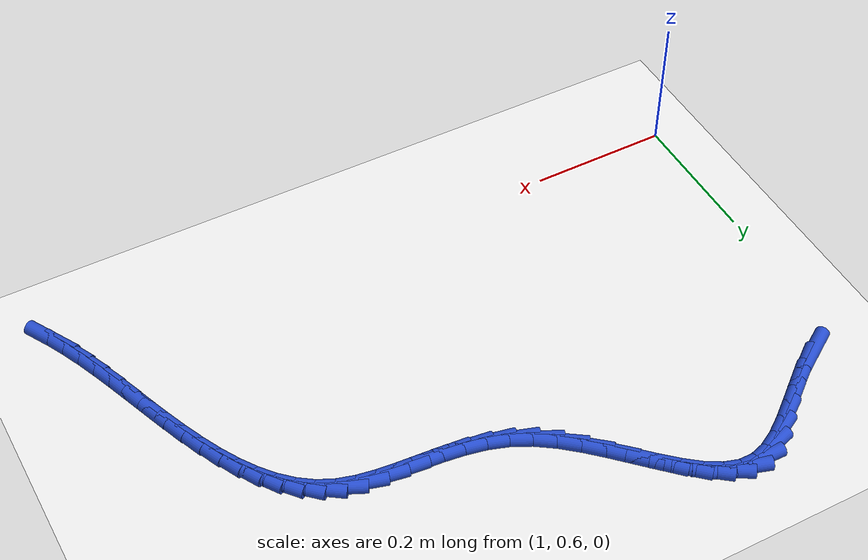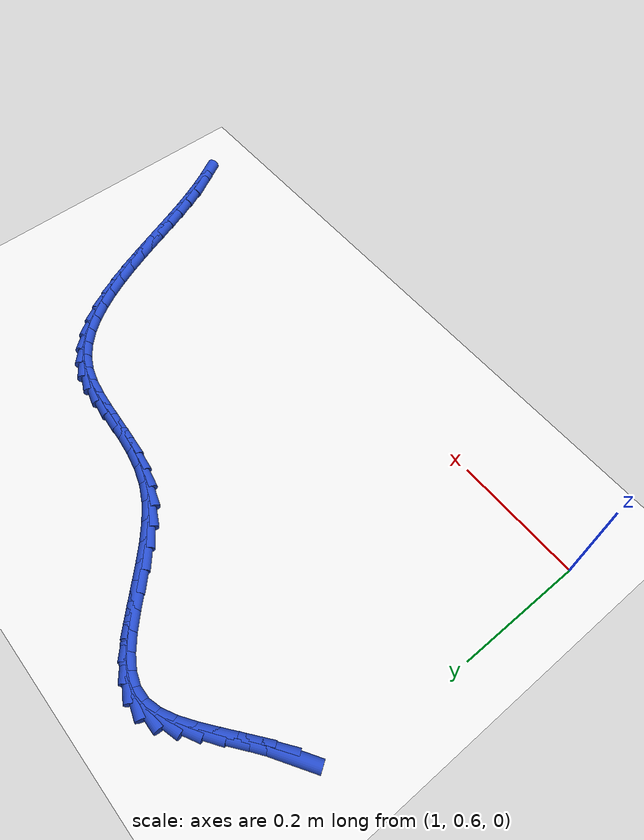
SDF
<sdf version="1.6">
 <world name="default">
  <model name="ground_plane">
   <static>1</static>
   <link name="link">
    <collision name="collision">
     <geometry><plane><normal>0 0 1</normal><size>100 100</size></plane></geometry>
     <surface><friction><ode><mu>100</mu><mu2>50</mu2></ode></friction></surface>
    </collision>
    <visual name="visual">
     <cast_shadows>0</cast_shadows>
     <geometry><plane><normal>0 0 1</normal><size>100 100</size></plane></geometry>
     <material>
      <script><uri>file://media/materials/scripts/gazebo.material</uri><name>Gazebo/WhiteGlow</name></script>
     </material>
    </visual>
   </link>
  </model>
  <model name="line">
   <link name="link_61">
    <pose>1.0534069448274923 1.0522554599802738 0.01 0 1.57 0.5718777276622412</pose>
    <collision name="collision">
     <geometry><cylinder><radius>0.01</radius><length>0.08</length></cylinder></geometry>
    </collision>
    <visual name="visual">
     <material>
      <script><name>Gazebo/Blue</name><uri>file://media/materials/scripts/gazebo.material</uri></script>
     </material>
     <geometry><cylinder><radius>0.01</radius><length>0.08</length></cylinder></geometry>
    </visual>
   </link>
   <link name="link_62">
    <pose>1.0791601967048152 1.0688307916904933 0.01 0 1.57 0.6449468357490047</pose>
    <collision name="collision">
     <geometry><cylinder><radius>0.01</radius><length>0.08</length></cylinder></geometry>
    </collision>
    <visual name="visual">
     <material>
      <script><name>Gazebo/Blue</name><uri>file://media/materials/scripts/gazebo.material</uri></script>
     </material>
     <geometry><cylinder><radius>0.01</radius><length>0.08</length></cylinder></geometry>
    </visual>
   </link>
   <link name="link_63">
    <pose>1.1041917038802125 1.0876610283717096 0.01 0 1.57 0.6753978885737065</pose>
    <collision name="collision">
     <geometry><cylinder><radius>0.01</radius><length>0.08</length></cylinder></geometry>
    </collision>
    <visual name="visual">
     <material>
      <script><name>Gazebo/Blue</name><uri>file://media/materials/scripts/gazebo.material</uri></script>
     </material>
     <geometry><cylinder><radius>0.01</radius><length>0.08</length></cylinder></geometry>
    </visual>
   </link>
   <link name="link_64">
    <pose>1.1285557269234388 1.107178510216852 0.01 0 1.57 0.6653369742243661</pose>
    <collision name="collision">
     <geometry><cylinder><radius>0.01</radius><length>0.08</length></cylinder></geometry>
    </collision>
    <visual name="visual">
     <material>
      <script><name>Gazebo/Blue</name><uri>file://media/materials/scripts/gazebo.material</uri></script>
     </material>
     <geometry><cylinder><radius>0.01</radius><length>0.08</length></cylinder></geometry>
    </visual>
   </link>
   <link name="link_65">
    <pose>1.1523065264042487 1.12581557741885 0.01 0 1.57 0.609414048286463</pose>
    <collision name="collision">
     <geometry><cylinder><radius>0.01</radius><length>0.08</length></cylinder></geometry>
    </collision>
    <visual name="visual">
     <material>
      <script><name>Gazebo/Blue</name><uri>file://media/materials/scripts/gazebo.material</uri></script>
     </material>
     <geometry><cylinder><radius>0.01</radius><length>0.08</length></cylinder></geometry>
    </visual>
   </link>
   <link name="link_66">
    <pose>1.175498362892397 1.1420045701706332 0.01 0 1.57 0.49247462118310764</pose>
    <collision name="collision">
     <geometry><cylinder><radius>0.01</radius><length>0.08</length></cylinder></geometry>
    </collision>
    <visual name="visual">
     <material>
      <script><name>Gazebo/Blue</name><uri>file://media/materials/scripts/gazebo.material</uri></script>
     </material>
     <geometry><cylinder><radius>0.01</radius><length>0.08</length></cylinder></geometry>
    </visual>
   </link>
   <link name="link_67">
    <pose>1.1981854969576382 1.15417782866513 0.01 0 1.57 0.2881056712653823</pose>
    <collision name="collision">
     <geometry><cylinder><radius>0.01</radius><length>0.08</length></cylinder></geometry>
    </collision>
    <visual name="visual">
     <material>
      <script><name>Gazebo/Blue</name><uri>file://media/materials/scripts/gazebo.material</uri></script>
     </material>
     <geometry><cylinder><radius>0.01</radius><length>0.08</length></cylinder></geometry>
    </visual>
   </link>
   <link name="link_68">
    <pose>1.220422189169727 1.160767693095271 0.01 0 1.57 -0.017070213978598474</pose>
    <collision name="collision">
     <geometry><cylinder><radius>0.01</radius><length>0.08</length></cylinder></geometry>
    </collision>
    <visual name="visual">
     <material>
      <script><name>Gazebo/Blue</name><uri>file://media/materials/scripts/gazebo.material</uri></script>
     </material>
     <geometry><cylinder><radius>0.01</radius><length>0.08</length></cylinder></geometry>
    </visual>
   </link>
   <link name="link_69">
    <pose>1.242270595344905 1.160394699896962 0.01 0 1.57 -0.3150210145547944</pose>
    <collision name="collision">
     <geometry><cylinder><radius>0.01</radius><length>0.08</length></cylinder></geometry>
    </collision>
    <visual name="visual">
     <material>
      <script><name>Gazebo/Blue</name><uri>file://media/materials/scripts/gazebo.material</uri></script>
     </material>
     <geometry><cylinder><radius>0.01</radius><length>0.08</length></cylinder></geometry>
    </visual>
   </link>
   <link name="link_70">
    <pose>1.2638633023680568 1.1533582263795796 0.01 0 1.57 -0.5271377800163405</pose>
    <collision name="collision">
     <geometry><cylinder><radius>0.01</radius><length>0.08</length></cylinder></geometry>
    </collision>
    <visual name="visual">
     <material>
      <script><name>Gazebo/Blue</name><uri>file://media/materials/scripts/gazebo.material</uri></script>
     </material>
     <geometry><cylinder><radius>0.01</radius><length>0.08</length></cylinder></geometry>
    </visual>
   </link>
   <link name="link_71">
    <pose>1.2853699008650052 1.1408396951481046 0.01 0 1.57 -0.6615853059170025</pose>
    <collision name="collision">
     <geometry><cylinder><radius>0.01</radius><length>0.08</length></cylinder></geometry>
    </collision>
    <visual name="visual">
     <material>
      <script><name>Gazebo/Blue</name><uri>file://media/materials/scripts/gazebo.material</uri></script>
     </material>
     <geometry><cylinder><radius>0.01</radius><length>0.08</length></cylinder></geometry>
    </visual>
   </link>
   <link name="link_72">
    <pose>1.3069603100398033 1.124028361012376 0.01 0 1.57 -0.7392312296707337</pose>
    <collision name="collision">
     <geometry><cylinder><radius>0.01</radius><length>0.08</length></cylinder></geometry>
    </collision>
    <visual name="visual">
     <material>
      <script><name>Gazebo/Blue</name><uri>file://media/materials/scripts/gazebo.material</uri></script>
     </material>
     <geometry><cylinder><radius>0.01</radius><length>0.08</length></cylinder></geometry>
    </visual>
   </link>
   <link name="link_73">
    <pose>1.3288044490965027 1.1041134787822344 0.01 0 1.57 -0.775451941982872</pose>
    <collision name="collision">
     <geometry><cylinder><radius>0.01</radius><length>0.08</length></cylinder></geometry>
    </collision>
    <visual name="visual">
     <material>
      <script><name>Gazebo/Blue</name><uri>file://media/materials/scripts/gazebo.material</uri></script>
     </material>
     <geometry><cylinder><radius>0.01</radius><length>0.08</length></cylinder></geometry>
    </visual>
   </link>
   <link name="link_74">
    <pose>1.3510722372391535 1.0822843032675165 0.01 0 1.57 -0.7786353338687526</pose>
    <collision name="collision">
     <geometry><cylinder><radius>0.01</radius><length>0.08</length></cylinder></geometry>
    </collision>
    <visual name="visual">
     <material>
      <script><name>Gazebo/Blue</name><uri>file://media/materials/scripts/gazebo.material</uri></script>
     </material>
     <geometry><cylinder><radius>0.01</radius><length>0.08</length></cylinder></geometry>
    </visual>
   </link>
   <link name="link_75">
    <pose>1.3739335936718093 1.059730089278063 0.01 0 1.57 -0.7518364163350696</pose>
    <collision name="collision">
     <geometry><cylinder><radius>0.01</radius><length>0.08</length></cylinder></geometry>
    </collision>
    <visual name="visual">
     <material>
      <script><name>Gazebo/Blue</name><uri>file://media/materials/scripts/gazebo.material</uri></script>
     </material>
     <geometry><cylinder><radius>0.01</radius><length>0.08</length></cylinder></geometry>
    </visual>
   </link>
   <link name="link_76">
    <pose>1.3975584375985204 1.0376400916237118 0.01 0 1.57 -0.6940486093549676</pose>
    <collision name="collision">
     <geometry><cylinder><radius>0.01</radius><length>0.08</length></cylinder></geometry>
    </collision>
    <visual name="visual">
     <material>
      <script><name>Gazebo/Blue</name><uri>file://media/materials/scripts/gazebo.material</uri></script>
     </material>
     <geometry><cylinder><radius>0.01</radius><length>0.08</length></cylinder></geometry>
    </visual>
   </link>
   <link name="link_77">
    <pose>1.4221166882233387 1.0172035651143025 0.01 0 1.57 -0.6010019453669507</pose>
    <collision name="collision">
     <geometry><cylinder><radius>0.01</radius><length>0.08</length></cylinder></geometry>
    </collision>
    <visual name="visual">
     <material>
      <script><name>Gazebo/Blue</name><uri>file://media/materials/scripts/gazebo.material</uri></script>
     </material>
     <geometry><cylinder><radius>0.01</radius><length>0.08</length></cylinder></geometry>
    </visual>
   </link>
   <link name="link_78">
    <pose>1.4477782647503157 0.9996097645596742 0.01 0 1.57 -0.4672737815228583</pose>
    <collision name="collision">
     <geometry><cylinder><radius>0.01</radius><length>0.08</length></cylinder></geometry>
    </collision>
    <visual name="visual">
     <material>
      <script><name>Gazebo/Blue</name><uri>file://media/materials/scripts/gazebo.material</uri></script>
     </material>
     <geometry><cylinder><radius>0.01</radius><length>0.08</length></cylinder></geometry>
    </visual>
   </link>
   <link name="link_79">
    <pose>1.4747065225168912 0.9860233553000808 0.01 0 1.57 -0.32056708417595814</pose>
    <collision name="collision">
     <geometry><cylinder><radius>0.01</radius><length>0.08</length></cylinder></geometry>
    </collision>
    <visual name="visual">
     <material>
      <script><name>Gazebo/Blue</name><uri>file://media/materials/scripts/gazebo.material</uri></script>
     </material>
     <geometry><cylinder><radius>0.01</radius><length>0.08</length></cylinder></geometry>
    </visual>
   </link>
   <link name="link_80">
    <pose>1.5028193322685846 0.976689371570524 0.01 0 1.57 -0.2050426987425711</pose>
    <collision name="collision">
     <geometry><cylinder><radius>0.01</radius><length>0.08</length></cylinder></geometry>
    </collision>
    <visual name="visual">
     <material>
      <script><name>Gazebo/Blue</name><uri>file://media/materials/scripts/gazebo.material</uri></script>
     </material>
     <geometry><cylinder><radius>0.01</radius><length>0.08</length></cylinder></geometry>
    </visual>
   </link>
   <link name="link_81">
    <pose>1.5317211644491149 0.9706787915739183 0.01 0 1.57 -0.12547350396702192</pose>
    <collision name="collision">
     <geometry><cylinder><radius>0.01</radius><length>0.08</length></cylinder></geometry>
    </collision>
    <visual name="visual">
     <material>
      <script><name>Gazebo/Blue</name><uri>file://media/materials/scripts/gazebo.material</uri></script>
     </material>
     <geometry><cylinder><radius>0.01</radius><length>0.08</length></cylinder></geometry>
    </visual>
   </link>
   <link name="link_82">
    <pose>1.560996087969309 0.9669861655626666 0.01 0 1.57 -0.08124234201683778</pose>
    <collision name="collision">
     <geometry><cylinder><radius>0.01</radius><length>0.08</length></cylinder></geometry>
    </collision>
    <visual name="visual">
     <material>
      <script><name>Gazebo/Blue</name><uri>file://media/materials/scripts/gazebo.material</uri></script>
     </material>
     <geometry><cylinder><radius>0.01</radius><length>0.08</length></cylinder></geometry>
    </visual>
   </link>
   <link name="link_83">
    <pose>1.590228171739994 0.9646060437891716 0.01 0 1.57 -0.0719239857612996</pose>
    <collision name="collision">
     <geometry><cylinder><radius>0.01</radius><length>0.08</length></cylinder></geometry>
    </collision>
    <visual name="visual">
     <material>
      <script><name>Gazebo/Blue</name><uri>file://media/materials/scripts/gazebo.material</uri></script>
     </material>
     <geometry><cylinder><radius>0.01</radius><length>0.08</length></cylinder></geometry>
    </visual>
   </link>
   <link name="link_84">
    <pose>1.6190014846719962 0.9625329765058358 0.01 0 1.57 -0.09901566003177574</pose>
    <collision name="collision">
     <geometry><cylinder><radius>0.01</radius><length>0.08</length></cylinder></geometry>
    </collision>
    <visual name="visual">
     <material>
      <script><name>Gazebo/Blue</name><uri>file://media/materials/scripts/gazebo.material</uri></script>
     </material>
     <geometry><cylinder><radius>0.01</radius><length>0.08</length></cylinder></geometry>
    </visual>
   </link>
   <link name="link_85">
    <pose>1.6469000956761444 0.9597615139650632 0.01 0 1.57 -0.166634555978437</pose>
    <collision name="collision">
     <geometry><cylinder><radius>0.01</radius><length>0.08</length></cylinder></geometry>
    </collision>
    <visual name="visual">
     <material>
      <script><name>Gazebo/Blue</name><uri>file://media/materials/scripts/gazebo.material</uri></script>
     </material>
     <geometry><cylinder><radius>0.01</radius><length>0.08</length></cylinder></geometry>
    </visual>
   </link>
   <link name="link_86">
    <pose>1.6735080736632633 0.9552862064192557 0.01 0 1.57 -0.28089341329585</pose>
    <collision name="collision">
     <geometry><cylinder><radius>0.01</radius><length>0.08</length></cylinder></geometry>
    </collision>
    <visual name="visual">
     <material>
      <script><name>Gazebo/Blue</name><uri>file://media/materials/scripts/gazebo.material</uri></script>
     </material>
     <geometry><cylinder><radius>0.01</radius><length>0.08</length></cylinder></geometry>
    </visual>
   </link>
   <link name="link_87">
    <pose>1.6984094875441818 0.9481016041208168 0.01 0 1.57 -0.44258007186875736</pose>
    <collision name="collision">
     <geometry><cylinder><radius>0.01</radius><length>0.08</length></cylinder></geometry>
    </collision>
    <visual name="visual">
     <material>
      <script><name>Gazebo/Blue</name><uri>file://media/materials/scripts/gazebo.material</uri></script>
     </material>
     <geometry><cylinder><radius>0.01</radius><length>0.08</length></cylinder></geometry>
    </visual>
   </link>
   <link name="link_88">
    <pose>1.721225843466963 0.9372881054609653 0.01 0 1.57 -0.6111173527483849</pose>
    <collision name="collision">
     <geometry><cylinder><radius>0.01</radius><length>0.08</length></cylinder></geometry>
    </collision>
    <visual name="visual">
     <material>
      <script><name>Gazebo/Blue</name><uri>file://media/materials/scripts/gazebo.material</uri></script>
     </material>
     <geometry><cylinder><radius>0.01</radius><length>0.08</length></cylinder></geometry>
    </visual>
   </link>
   <link name="link_89">
    <pose>1.7419471412663887 0.9227711096777925 0.01 0 1.57 -0.7578138614818415</pose>
    <collision name="collision">
     <geometry><cylinder><radius>0.01</radius><length>0.08</length></cylinder></geometry>
    </collision>
    <visual name="visual">
     <material>
      <script><name>Gazebo/Blue</name><uri>file://media/materials/scripts/gazebo.material</uri></script>
     </material>
     <geometry><cylinder><radius>0.01</radius><length>0.08</length></cylinder></geometry>
    </visual>
   </link>
   <link name="link_90">
    <pose>1.7607728513734862 0.9049563575663926 0.01 0 1.57 -0.8794606070302597</pose>
    <collision name="collision">
     <geometry><cylinder><radius>0.01</radius><length>0.08</length></cylinder></geometry>
    </collision>
    <visual name="visual">
     <material>
      <script><name>Gazebo/Blue</name><uri>file://media/materials/scripts/gazebo.material</uri></script>
     </material>
     <geometry><cylinder><radius>0.01</radius><length>0.08</length></cylinder></geometry>
    </visual>
   </link>
   <link name="link_91">
    <pose>1.7779048599772713 0.8842551295487773 0.01 0 1.57 -0.9771620518458581</pose>
    <collision name="collision">
     <geometry><cylinder><radius>0.01</radius><length>0.08</length></cylinder></geometry>
    </collision>
    <visual name="visual">
     <material>
      <script><name>Gazebo/Blue</name><uri>file://media/materials/scripts/gazebo.material</uri></script>
     </material>
     <geometry><cylinder><radius>0.01</radius><length>0.08</length></cylinder></geometry>
    </visual>
   </link>
   <link name="link_92">
    <pose>1.79354505326676 0.8610787060469575 0.01 0 1.57 -1.0538268053528062</pose>
    <collision name="collision">
     <geometry><cylinder><radius>0.01</radius><length>0.08</length></cylinder></geometry>
    </collision>
    <visual name="visual">
     <material>
      <script><name>Gazebo/Blue</name><uri>file://media/materials/scripts/gazebo.material</uri></script>
     </material>
     <geometry><cylinder><radius>0.01</radius><length>0.08</length></cylinder></geometry>
    </visual>
   </link>
   <link name="link_93">
    <pose>1.8078953174309684 0.8358383674829457 0.01 0 1.57 -1.1126451698235005</pose>
    <collision name="collision">
     <geometry><cylinder><radius>0.01</radius><length>0.08</length></cylinder></geometry>
    </collision>
    <visual name="visual">
     <material>
      <script><name>Gazebo/Blue</name><uri>file://media/materials/scripts/gazebo.material</uri></script>
     </material>
     <geometry><cylinder><radius>0.01</radius><length>0.08</length></cylinder></geometry>
    </visual>
   </link>
   <link name="link_94">
    <pose>1.8211575386589116 0.8089453942787533 0.01 0 1.57 -1.1563799704834994</pose>
    <collision name="collision">
     <geometry><cylinder><radius>0.01</radius><length>0.08</length></cylinder></geometry>
    </collision>
    <visual name="visual">
     <material>
      <script><name>Gazebo/Blue</name><uri>file://media/materials/scripts/gazebo.material</uri></script>
     </material>
     <geometry><cylinder><radius>0.01</radius><length>0.08</length></cylinder></geometry>
    </visual>
   </link>
   <link name="link_95">
    <pose>1.8335336031396063 0.7808110668563919 0.01 0 1.57 -1.1871380603355346</pose>
    <collision name="collision">
     <geometry><cylinder><radius>0.01</radius><length>0.08</length></cylinder></geometry>
    </collision>
    <visual name="visual">
     <material>
      <script><name>Gazebo/Blue</name><uri>file://media/materials/scripts/gazebo.material</uri></script>
     </material>
     <geometry><cylinder><radius>0.01</radius><length>0.08</length></cylinder></geometry>
    </visual>
   </link>
   <link name="link_96">
    <pose>1.845225397062068 0.7518466656378728 0.01 0 1.57 -1.2063475339395864</pose>
    <collision name="collision">
     <geometry><cylinder><radius>0.01</radius><length>0.08</length></cylinder></geometry>
    </collision>
    <visual name="visual">
     <material>
      <script><name>Gazebo/Blue</name><uri>file://media/materials/scripts/gazebo.material</uri></script>
     </material>
     <geometry><cylinder><radius>0.01</radius><length>0.08</length></cylinder></geometry>
    </visual>
   </link>
   <link name="link_97">
    <pose>1.856434806615312 0.7224634710452079 0.01 0 1.57 -1.2147908505844702</pose>
    <collision name="collision">
     <geometry><cylinder><radius>0.01</radius><length>0.08</length></cylinder></geometry>
    </collision>
    <visual name="visual">
     <material>
      <script><name>Gazebo/Blue</name><uri>file://media/materials/scripts/gazebo.material</uri></script>
     </material>
     <geometry><cylinder><radius>0.01</radius><length>0.08</length></cylinder></geometry>
    </visual>
   </link>
   <link name="link_98">
    <pose>1.8673637179883547 0.6930727635004088 0.01 0 1.57 -1.2126247387569489</pose>
    <collision name="collision">
     <geometry><cylinder><radius>0.01</radius><length>0.08</length></cylinder></geometry>
    </collision>
    <visual name="visual">
     <material>
      <script><name>Gazebo/Blue</name><uri>file://media/materials/scripts/gazebo.material</uri></script>
     </material>
     <geometry><cylinder><radius>0.01</radius><length>0.08</length></cylinder></geometry>
    </visual>
   </link>
   <link name="link_99">
    <pose>1.8782140173702122 0.6640858234254873 0.01 0 1.57 -1.1994061360290218</pose>
    <collision name="collision">
     <geometry><cylinder><radius>0.01</radius><length>0.08</length></cylinder></geometry>
    </collision>
    <visual name="visual">
     <material>
      <script><name>Gazebo/Blue</name><uri>file://media/materials/scripts/gazebo.material</uri></script>
     </material>
     <geometry><cylinder><radius>0.01</radius><length>0.08</length></cylinder></geometry>
    </visual>
   </link>
   <link name="link_100">
    <pose>1.8891878591452123 0.6359089958126027 0.01 0 1.57 -1.1760706897455728</pose>
    <collision name="collision">
     <geometry><cylinder><radius>0.01</radius><length>0.08</length></cylinder></geometry>
    </collision>
    <visual name="visual">
     <material>
      <script><name>Gazebo/Blue</name><uri>file://media/materials/scripts/gazebo.material</uri></script>
     </material>
     <geometry><cylinder><radius>0.01</radius><length>0.08</length></cylinder></geometry>
    </visual>
   </link>
   <link name="link_101">
    <pose>1.9004976167805088 0.6087605702929184 0.01 0 1.57 -1.1445607715036472</pose>
    <collision name="collision">
     <geometry><cylinder><radius>0.01</radius><length>0.08</length></cylinder></geometry>
    </collision>
    <visual name="visual">
     <material>
      <script><name>Gazebo/Blue</name><uri>file://media/materials/scripts/gazebo.material</uri></script>
     </material>
     <geometry><cylinder><radius>0.01</radius><length>0.08</length></cylinder></geometry>
    </visual>
   </link>
   <link name="link_102">
    <pose>1.9123688201610956 0.5826167272056716 0.01 0 1.57 -1.104942185150727</pose>
    <collision name="collision">
     <geometry><cylinder><radius>0.01</radius><length>0.08</length></cylinder></geometry>
    </collision>
    <visual name="visual">
     <material>
      <script><name>Gazebo/Blue</name><uri>file://media/materials/scripts/gazebo.material</uri></script>
     </material>
     <geometry><cylinder><radius>0.01</radius><length>0.08</length></cylinder></geometry>
    </visual>
   </link>
   <link name="link_103">
    <pose>1.9250278666147635 0.5574376838852674 0.01 0 1.57 -1.0574553291814013</pose>
    <collision name="collision">
     <geometry><cylinder><radius>0.01</radius><length>0.08</length></cylinder></geometry>
    </collision>
    <visual name="visual">
     <material>
      <script><name>Gazebo/Blue</name><uri>file://media/materials/scripts/gazebo.material</uri></script>
     </material>
     <geometry><cylinder><radius>0.01</radius><length>0.08</length></cylinder></geometry>
    </visual>
   </link>
  </model>
 </world>
</sdf>
